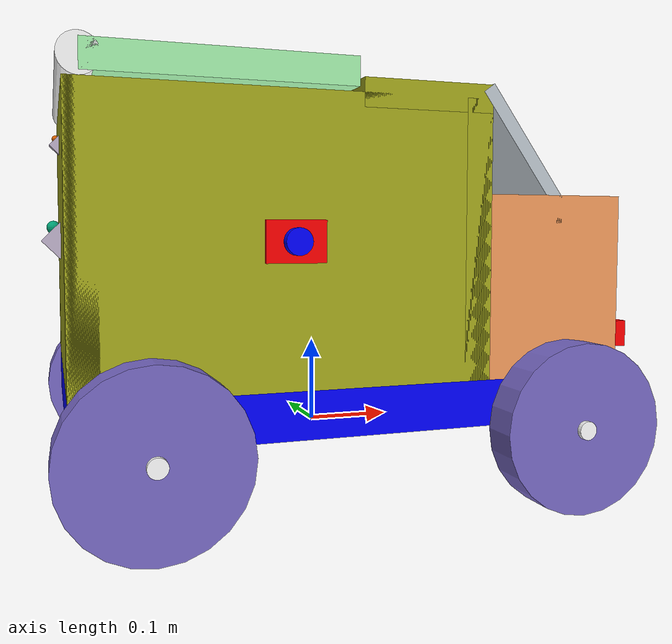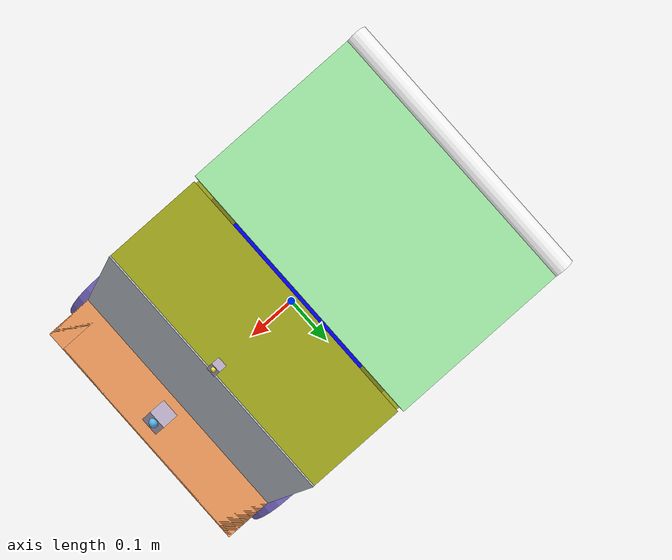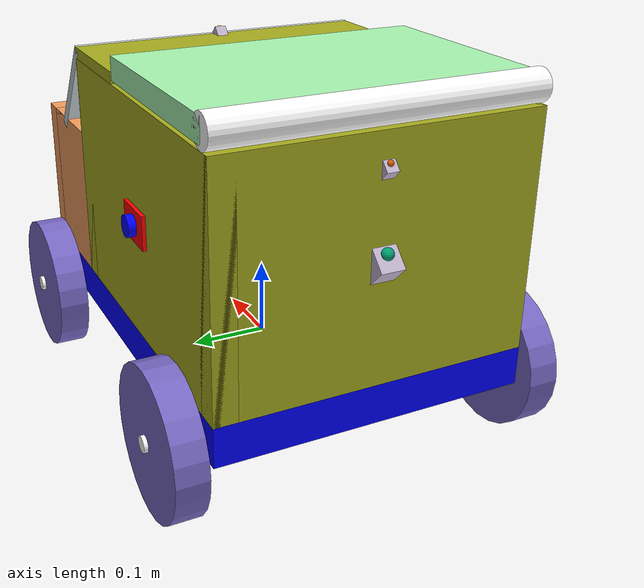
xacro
<?xml version="1.0"?>
<robot xmlns:xacro="http://www.ros.org/wiki/xacro" name="robot_frame">

    <xacro:include filename="geometry.xacro"/>
    <xacro:include filename="inertial.xacro"/>
    <xacro:include filename="wheels.xacro"/>
    <xacro:include filename="box.xacro"/>
    <xacro:include filename="lidars.xacro"/>
    <xacro:include filename="cameras.xacro"/>
    <xacro:include filename="gazebo_control.xacro"/>

    <!-- GRIPPERS AND JOINTS -->
    <!-- [DEBUG] -->

    <!-- LADLE AND JOINTS -->
    <!-- [DEBUG] -->

    <!-- BASIS LINK -->
    <link name="base_link"/>

    <!-- CHASSIS LINK -->
    <link name="chassis">
        <visual>
            <origin xyz="${chassis_depth/2.0} 0 ${chassis_height/2}"/>
            <geometry>
                <box size="${box_depth} ${box_width} ${chassis_height}"/>
            </geometry>
            <material name="BlueOne"/>
        </visual>
        <collision>
            <origin xyz="${chassis_depth/2.0} 0 ${chassis_height/2}"/>
            <geometry>
                <box size="${box_depth} ${box_width} ${chassis_height}"/>
            </geometry>
        </collision>
        <xacro:inertial_box mass="${chassis_mass}" x="${box_width}" y="${box_depth}" z="${chassis_height}">
            <origin xyz="${chassis_depth/2.0} 0 ${chassis_height/2}"/>
        </xacro:inertial_box>
    </link>
    <gazebo reference="chassis">
    	<material>Gazebo/Blue</material>
	</gazebo>

    <!-- JOINT: CHASSIS + BASIS -->
    <joint name="chassis_joint" type="fixed">
        <parent link="base_link"/>
        <child link="chassis"/>
        <origin xyz="-${chassis_depth/2.0} 0 ${chassis_height/2}"/>
    </joint>

    <!-- JOINT: CHASSIS + FRONT AXLE -->
    <joint name="front_axle_chassis_joint" type="fixed">
        <parent link="chassis"/>
        <child link="front_axle"/>
        <origin xyz="${chassis_depth - round(chassis_depth * 1/8, 3)} 0 0" rpy="${pi/2} 0 0"/>
    </joint>

    <!-- JOINT: CHASSIS + BACK AXLE -->
    <joint name="back_axle_chassis_joint" type="fixed">
        <parent link="chassis"/>
        <child link="back_axle"/>
        <origin xyz="${round(chassis_depth * 1/8, 3)} 0 0" rpy="${pi/2} 0 0"/>
    </joint>

    <!-- HOOD -->
    <!-- JOINT: HOOD FRONT + CHASSIS -->
    <joint name="hfront_chassis_joint" type="fixed">
        <parent link="chassis"/>
        <child link="hood_front"/>
        <origin xyz="${chassis_depth} 0 ${chassis_height}"/>
    </joint>

    <!-- JOINT: HOOD LEFT + CHASSIS -->
    <joint name="hleft_chassis_joint" type="fixed">
        <parent link="chassis"/>
        <child link="hood_left"/>
        <origin xyz="${chassis_box_depth + chassis_hood_depth/2} ${chassis_width/2} ${chassis_height}"/>
    </joint>

    <!-- JOINT: HOOD RIGHT + CHASSIS -->
    <joint name="hright_chassis_joint" type="fixed">
        <parent link="chassis"/>
        <child link="hood_right"/>
        <origin xyz="${chassis_box_depth + chassis_hood_depth/2} -${chassis_width/2} ${chassis_height}"/>
    </joint>

    <!-- JOINT: HOOD TOP + HOOD FRONT -->
    <joint name="htop_hfront_joint" type="fixed">
        <parent link="hood_front"/>
        <child link="hood_top"/>
        <origin xyz="-${hood_top_depth} 0 ${hood_fb_height}"/>
    </joint>

    <!-- JOINT: HOOD BAFFEL + HOOD TOP -->
    <joint name="hbaffle_htop_joint" type="fixed">
        <parent link="hood_top"/>
        <child link="hood_baffle"/>
        <origin xyz="-${hood_top_depth/2} 0 ${chassis_height}"/>
    </joint>

    <!-- LADLE -->
    <!-- JOINT: BOX LADLE + HOOD FRONT -->
    <joint name="bladle_hfront_joint" type="fixed">
        <parent link="hood_front"/>
        <child link="box_ladle_front"/>
        <origin xyz="0 0 ${hood_fb_height/5}"/>
    </joint>

    <!-- JOINT: LADLE BRACKET HOLDER LEFT + BOX LADLE -->
    <joint name="lbracket_holder_bladle_joint" type="fixed">
        <parent link="box_ladle_front"/>
        <child link="box_bracket_holder_left"/>
        <origin xyz="${box_bracket_ladle_depth + box_bracket_ladle_depth/2} ${box_bracket_ladle_width/2 - box_bracket_holder_width/2} 0"/>
    </joint>

    <!-- JOINT: LADLE BRACKET HOLDER RIGHT + BOX LADLE -->
    <joint name="rbracket_holder_bladle_joint" type="fixed">
        <parent link="box_ladle_front"/>
        <child link="box_bracket_holder_right"/>
        <origin xyz="${box_bracket_ladle_depth+ box_bracket_ladle_depth/2} -${box_bracket_ladle_width/2 - box_bracket_holder_width/2} 0"/>
    </joint>

    <!-- LADLE (INCLUDES)-->

    <!-- BOX PANELS -->
    <!-- JOINT: PANEL BACK + CHASSIS -->
    <joint name="pback_chassis_joint" type="fixed">
        <parent link="chassis"/>
        <child link="box_panel_back"/>
        <origin xyz="${box_panel_fb_depth/2} 0 ${chassis_height}"/>
    </joint>

    <!-- JOINT: PANEL FRONT + CHASSIS -->
    <joint name="pfront_chassis_joint" type="fixed">
        <parent link="chassis"/>
        <child link="box_panel_front"/>
        <origin xyz="${chassis_box_depth} 0 ${chassis_height}"/>
    </joint>

    <!-- JOINT: PANEL LEFT + CHASSIS -->
    <joint name="pleft_chassis_joint" type="fixed">
        <parent link="chassis"/>
        <child link="box_panel_left"/>
        <origin xyz="${chassis_box_depth/2} ${chassis_width/2} ${chassis_height}"/>
    </joint>

    <!-- JOINT: PANEL RIGHT + CHASSIS -->
    <joint name="pright_chassis_joint" type="fixed">
        <parent link="chassis"/>
        <child link="box_panel_right"/>
        <origin xyz="${chassis_box_depth/2} -${chassis_width/2} ${chassis_height}"/>
    </joint>

    <!-- JOINT: PANEL TOP + PANEL FRONT -->
    <joint name="ptop_pfront_joint" type="fixed">
        <parent link="box_panel_front"/>
        <child link="box_panel_top"/>
        <origin xyz="-${box_panel_top_depth} 0 ${box_panel_fb_height}"/>
    </joint>

    <!-- JOINT: HINGE + PANEL BACK -->
    <joint name="hinge_pback_joint" type="fixed">
        <parent link="box_panel_back"/>
        <child link="hinge_cover"/>
        <origin xyz="0 0 ${box_panel_fb_height + hinge_cover_radius}" rpy="${pi/2} 0 0"/>
    </joint>

    <!-- JOINT: BOX COVER + HINGE -->
    <!-- [DEBUG] -->
    <joint name="cover_hinge_joint" type="fixed">
        <parent link="hinge_cover"/>
        <child link="box_cover"/>
        <axis xyz="0 1 0"/>
        <origin xyz="0 0 0" rpy="${pi/2} 0 0" />
        <limit effort="100.0" lower="0.0" upper="1.0" velocity="0.5"/>
    </joint>

    <!-- JOINT: BOX GRIPPER + PANEL LEFT -->
    <joint name="bgripper_pleft_joint" type="fixed">
        <parent link="box_panel_left"/>
        <child link="box_gripper_left"/>
        <origin xyz="0 0 ${box_panel_lr_height/2}"/>
    </joint>

    <!-- JOINT: BOX GRIPPER HOLDER + BOX GRIPPER LEFT -->
    <joint name="bgripper_holder_pleft_joint" type="fixed">
        <parent link="box_gripper_left"/>
        <child link="box_gripper_holder_left"/>
        <origin xyz="0 ${box_gripper_holder_length/2} 0"/>
    </joint>

    <!-- JOINT: BOX GRIPPER + PANEL RIGHT -->
    <joint name="bgripper_pright_joint" type="fixed">
        <parent link="box_panel_right"/>
        <child link="box_gripper_right"/>
        <origin xyz="0 0 ${box_panel_lr_height/2}"/>
    </joint>

    <!-- JOINT: BOX GRIPPER HOLDER + BOX GRIPPER RIGHT -->
    <joint name="bgripper_holder_pright_joint" type="fixed">
        <parent link="box_gripper_right"/>
        <child link="box_gripper_holder_right"/>
        <origin xyz="0 -${box_gripper_holder_length/2} 0"/>
    </joint>

    <!-- JOINT: FRONT LEFT WHEEL -->
    <joint name="front_left_wheel_joint" type="continuous">
        <parent link="front_axle"/>
        <child link="front_left_wheel"/>
        <origin xyz="0 0 -${axle_length/2 - wheel_length/2 - wheel_screw}" rpy="${pi} 0 0"/>
        <axis xyz="0 0 1"/>
    </joint>

    <!-- JOINT: FRONT RIGHT WHEEL -->
    <joint name="front_right_wheel_joint" type="continuous">
        <parent link="front_axle"/>
        <child link="front_right_wheel"/>
        <origin xyz="0 0 ${axle_length/2 - wheel_length/2 - wheel_screw}" rpy="-${pi} 0 0"/>
        <axis xyz="0 0 -1"/>
    </joint>

    <!-- JOINT: BACK LEFT WHEEL -->
    <joint name="back_left_wheel_joint" type="continuous">
        <parent link="back_axle"/>
        <child link="back_left_wheel"/>
        <origin xyz="0 0 -${axle_length/2 - wheel_length/2 - wheel_screw}" rpy="${pi} 0 0"/>
        <axis xyz="0 0 1"/>
    </joint>

    <!-- JOINT: BACK RIGHT WHEEL -->
    <joint name="back_right_wheel_joint" type="continuous">
        <parent link="back_axle"/>
        <child link="back_right_wheel"/>
        <origin xyz="0 0 ${axle_length/2 - wheel_length/2 - wheel_screw}" rpy="-${pi} 0 0"/>
        <axis xyz="0 0 -1"/>
    </joint>

</robot>

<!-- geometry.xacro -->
<robot xmlns:xacro="http://www.ros.org/wiki/xacro">

    <!-- PROPETIES -->

    <!-- FULL BOX PARAMS -->
    <xacro:property name="box_width" value="0.4" />
    <xacro:property name="box_height" value="0.3" />
    <xacro:property name="box_depth" value="0.6" />
    <xacro:property name="box_full_mass" value="30" />

    <!-- CHASSIS PARAMS-->
    <xacro:property name="chassis_depth" value="${box_depth}" />
    <xacro:property name="chassis_hood_depth" value="${box_depth/3.7}" />
    <xacro:property name="chassis_box_depth" value="${box_depth - chassis_hood_depth}" />
    <xacro:property name="chassis_width" value="${box_width}" />
    <xacro:property name="chassis_height" value="0.05" />
    <xacro:property name="chassis_mass" value="0.5" />

    <!-- BOX PANEL PARAMS-->
    <xacro:property name="box_panel_mass" value="${box_full_mass/(6*3)}" />
    <xacro:property name="box_panel_thickness" value=".03" />
    <!-- ... FRONT-BACK -->
    <xacro:property name="box_panel_fb_width" value="${box_width}" />
    <xacro:property name="box_panel_fb_height" value="${box_height}" />
    <xacro:property name="box_panel_fb_depth" value="${box_panel_thickness}" />
    <!-- ... LEFT-RIGHT -->
    <xacro:property name="box_panel_lr_width" value="${box_panel_thickness}" />
    <xacro:property name="box_panel_lr_height" value="${box_height}" />
    <xacro:property name="box_panel_lr_depth" value="${chassis_box_depth}" />
    <!-- ... TOP -->
    <xacro:property name="box_panel_top_width" value="${box_width}" />
    <xacro:property name="box_panel_top_height" value="${box_panel_thickness}" />
    <xacro:property name="box_panel_top_depth" value="${chassis_box_depth * 1/3}" />
    <!-- ... COVER -->
    <xacro:property name="box_cover_width" value="${box_width}" />
    <xacro:property name="box_cover_height" value="${box_panel_thickness}" />
    <xacro:property name="box_cover_depth" value="${chassis_box_depth - box_panel_top_depth - hinge_cover_radius}" />

    <!-- HOOD BOX PARAMS -->
    <xacro:property name="hood_full_mass" value="${box_full_mass/6}" />
    <xacro:property name="hood_panel_mass" value="${hood_full_mass/4}" />
    <!-- ... LEFT-RIGHT -->
    <xacro:property name="hood_lr_depth" value="${chassis_hood_depth}" />
    <xacro:property name="hood_lr_width" value="${box_panel_thickness}" />
    <xacro:property name="hood_lr_max_height" value="${box_height}" />
    <xacro:property name="hood_lr_min_height" value="${hood_lr_max_height - hood_lr_max_height*1/3}" />
    <!-- ... FRONT-BACK -->
    <xacro:property name="hood_fb_width" value="${box_width}" />
    <xacro:property name="hood_fb_height" value="${hood_lr_min_height}" />
    <xacro:property name="hood_fb_depth" value="${box_panel_thickness}" />
    <!-- ... TOP -->
    <xacro:property name="hood_top_width" value="${box_width}" />
    <xacro:property name="hood_top_height" value="${box_panel_thickness}" />
    <xacro:property name="hood_top_depth" value="${chassis_hood_depth/2}" />
    <!-- ... TOP BAFFLE -->
    <xacro:property name="hood_baffle_width" value="${box_width}" />
    <xacro:property name="hood_baffle_height" value="${sqrt((hood_lr_max_height - hood_lr_min_height + box_panel_thickness)**2 + hood_top_depth**2)}" />
    <xacro:property name="hood_baffle_depth" value="${box_panel_thickness/2}" />

    <!-- BOX GRIPPERS PARAMS-->
    <xacro:property name="box_gripper_mass" value="${box_panel_mass/5}" />
    <xacro:property name="box_gripper_depth" value="${chassis_box_depth/7}" />
    <xacro:property name="box_gripper_width" value="${box_panel_thickness/3}" />
    <xacro:property name="box_gripper_height" value="${box_height/7}" />
    <!-- ... BOX GRIPPER HOLDER -->
    <xacro:property name="box_gripper_holder_radius" value="${(box_gripper_height - (box_gripper_height * 1/2.8))/2}" />
    <xacro:property name="box_gripper_holder_length" value="0.015" />
    <xacro:property name="box_gripper_holder_mass" value="${box_gripper_mass}" />
    <!-- BOX LADLE PARAMS-->
    <!-- ... BOX BRACKET -->
    <xacro:property name="box_bracket_ladle_mass" value="${box_panel_mass/5}" />
    <xacro:property name="box_bracket_ladle_depth" value="${box_panel_thickness/2}" />
    <xacro:property name="box_bracket_ladle_width" value="${box_width - box_panel_thickness*2}" />
    <xacro:property name="box_bracket_ladle_height" value="${hood_lr_min_height/3}" />
    <!-- ... BRACKET HOLDERS-->
    <xacro:property name="box_bracket_holder_mass" value="${box_panel_mass/10}" />
    <xacro:property name="box_bracket_holder_depth" value="${box_panel_thickness}" />
    <xacro:property name="box_bracket_holder_width" value="${box_panel_thickness}" />
    <xacro:property name="box_bracket_holder_height" value="${box_panel_thickness}" />

    <!-- GRIPPER PARAMS-->
    <xacro:property name="gripper_mass" value="0.1" />
    <xacro:property name="gripper_reflect_base" value="1" />

    <!-- HINGE COVER -->
    <xacro:property name="hinge_cover_mass" value="0.5" />
    <xacro:property name="hinge_cover_radius" value="0.02" />
    <xacro:property name="hinge_cover_length" value="${box_width}" />

    <!-- ARTICULATION PARAMS-->
    <!-- ... BASE PARAMS-->
    <xacro:property name="base_articulation_radius" value="${box_gripper_holder_radius*1.2}" />
    <xacro:property name="base_articulation_length" value="0.007" />
    <xacro:property name="base_articulation_mass" value="${box_gripper_holder_mass}" />
    <!-- ... JOINT PARAMS-->
    <xacro:property name="articulation_radius" value="${base_articulation_radius/1.2}" />
    <xacro:property name="articulation_length" value="${manipulator_radius*2 + (manipulator_radius * 1/2)}" />
    <xacro:property name="articulation_mass" value="${base_articulation_mass}" />
    <!-- ... END EFFECTOR PARAMS-->
    <xacro:property name="articulation_end_effector_radius" value="0.014" />
    <xacro:property name="articulation_end_effector_mass" value="${base_articulation_mass/2}" />

    <!-- MANIPULATOR PARAMS -->
    <xacro:property name="manipulator_mass_density" value="2500" /> <!-- плотность AL (кг/м3)-->
    <xacro:property name="manipulator_radius" value="${box_gripper_holder_radius - (box_gripper_holder_radius*1.8)}" />
    <xacro:property name="manipulator_1st_length" value="${box_height/10}" />
    <xacro:property name="manipulator_2nd_length" value="${box_height/1.35}" />
    <xacro:property name="manipulator_3rd_length" value="${box_width/2.2}" />

    <!-- WHEELS PARAMS-->
    <xacro:property name="wheel_radius" value="${box_depth * 1/6.5}" />
    <xacro:property name="wheel_length" value="0.04" />
    <xacro:property name="wheel_mass" value="2" />
    <xacro:property name="wheel_screw" value="0.005" />

    <!-- AXLE PARAMS-->
    <xacro:property name="axle_length" value="${box_width + wheel_length*2 + 0.02 + wheel_screw*2}" />
    <xacro:property name="axle_radius" value="0.01" />
    <xacro:property name="axle_mass" value="0.015" />

    <!-- LADLE PARAMS-->
    <xacro:property name="ladle_plate_mass" value="1.0" />
    <xacro:property name="ladle_plate_depth" value="${box_panel_thickness/2}" />
    <xacro:property name="ladle_plate_width" value="${box_width}" />
    <xacro:property name="ladle_plate_height" value="${box_height/4}" />
    <!-- .. SLEEVE (FOR PLATES) -->
    <xacro:property name="ladle_sleeve_length" value="${box_width}" />
    <xacro:property name="ladle_sleeve_radius" value="${box_panel_thickness/2}" />
    <xacro:property name="ladle_sleeve_mass" value="0.5" />
    <!-- .. BRACKET (FOR LADLE) -->
    <xacro:property name="ladle_bracket_length" value="${box_bracket_ladle_width - box_panel_thickness*2}" />
    <xacro:property name="ladle_bracket_radius" value="${box_panel_thickness/2}" />
    <xacro:property name="ladle_bracket_mass" value="0.5" />
    <!-- .. BRACKET VERTICAL (FOR LADLE) -->
    <xacro:property name="ladle_bracket_vertical_mass" value="${box_panel_mass/8}" />
    <xacro:property name="ladle_bracket_vertical_depth" value="${ladle_bracket_length/1.2}" />
    <xacro:property name="ladle_bracket_vertical_width" value="${box_panel_thickness/1.2}" />
    <xacro:property name="ladle_bracket_vertical_height" value="${box_panel_thickness/1.2}" />

    <!-- SENSORS -->
    <!-- LIDAR -->
    <xacro:property name="lidar_mass" value="0.05" />
    <xacro:property name="lidar_box_panel" value="${box_panel_thickness}" />
    <!-- CAMERA -->
    <xacro:property name="camera_mass" value="0.02" />
    <xacro:property name="camera_box_panel" value="${box_panel_thickness/2}" />

</robot>

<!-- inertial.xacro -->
<robot xmlns:xacro="http://www.ros.org/wiki/xacro">

    <xacro:macro name="inertial_default" params="mass">
        <inertial>
            <mass value="${mass}" />
            <inertia ixx="1.0" ixy="0.0" ixz="0.0" iyy="1.0" iyz="0.0" izz="1.0" />
        </inertial>
    </xacro:macro>

    <xacro:macro name="inertial_sphere" params="mass radius *origin">
        <inertial>
            <xacro:insert_block name="origin"/>
            <mass value="${mass}" />
            <inertia ixx="${(2/5) * mass * (radius*radius)}" ixy="0.0" ixz="0.0"
                    iyy="${(2/5) * mass * (radius*radius)}" iyz="0.0"
                    izz="${(2/5) * mass * (radius*radius)}" />
        </inertial>
    </xacro:macro>

    <xacro:macro name="inertial_box" params="mass x y z *origin">
        <inertial>
            <xacro:insert_block name="origin"/>
            <mass value="${mass}" />
            <inertia ixx="${(1/12) * mass * (y*y+z*z)}" ixy="0.0" ixz="0.0"
                    iyy="${(1/12) * mass * (x*x+z*z)}" iyz="0.0"
                    izz="${(1/12) * mass * (x*x+y*y)}" />
        </inertial>
    </xacro:macro>

    <xacro:macro name="inertial_cylinder" params="mass length radius *origin">
        <inertial>
            <xacro:insert_block name="origin"/>
            <mass value="${mass}" />
            <inertia ixx="${(1/12) * mass * (3*radius**2 + length**2)}" ixy="0.0" ixz="0.0"
                    iyy="${(1/12) * mass * (3*radius**2 + length**2)}" iyz="0.0"
                    izz="${(1/2) * mass * (radius**2)}" />
        </inertial>
    </xacro:macro>

</robot>

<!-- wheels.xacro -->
<robot xmlns:xacro="http://www.ros.org/wiki/xacro">

    <xacro:include filename="geometry.xacro"/>

    <xacro:macro name="axle" params="position rotate">
        <visual>
            <origin xyz="${position}" rpy="${rotate}"/>
            <geometry>
                <cylinder length="${axle_length}" radius="${axle_radius}" />
            </geometry>
            <material name="WhiteOne"/>
        </visual>
        <collision>
            <origin xyz="0 0 0" rpy="0 0 0" />
            <geometry>
                <cylinder length="${axle_length}" radius="${axle_radius}" />
            </geometry>
        </collision>
        <xacro:inertial_cylinder mass="${axle_mass}" length="${axle_length}" radius="${axle_radius}">
            <origin xyz="0 0 0" rpy="0 0 0"/>
        </xacro:inertial_cylinder>
    </xacro:macro>

    <xacro:macro name="wheel" params="position rotate">
        <visual>
            <origin xyz="${position}" rpy="${rotate}"/>
            <geometry>
                <cylinder length="${wheel_length}" radius="${wheel_radius}" />
            </geometry>
            <material name="IndigoOne"/>
        </visual>
        <collision>
            <origin xyz="0 0 0" rpy="0 0 0" />
            <geometry>
                <cylinder length="${wheel_length}" radius="${wheel_radius}" />
            </geometry>
        </collision>
        <xacro:inertial_cylinder mass="${wheel_mass}" length="${wheel_length}" radius="${wheel_radius}">
            <origin xyz="0 0 0" rpy="0 0 0"/>
        </xacro:inertial_cylinder>
    </xacro:macro>

    <!-- FRONT AXLE -->
    <link name="front_axle">
        <xacro:axle
            position="0 0 0"
            rotate="0 0 0"
        />
    </link>

    <!-- BACK AXLE -->
    <link name="back_axle">
        <xacro:axle
            position="0 0 0"
            rotate="0 0 0"
        />
    </link>

    <!-- LEFT FRONT WHEEL -->
    <link name="front_left_wheel">
        <xacro:wheel
            position="0 0 0"
            rotate="${pi} 0 0"
        />
    </link>

    <!-- RIGHT FRONT WHEEL -->
    <link name="front_right_wheel">
        <xacro:wheel
            position="0 0 0"
            rotate="-${pi} 0 0"
        />
    </link>

    <!-- LEFT BACK WHEEL -->
    <link name="back_left_wheel">
        <xacro:wheel
            position="0 0 0"
            rotate="${pi} 0 0"/>
    </link>

    <!-- RIGHT BACK WHEEL -->
    <link name="back_right_wheel">
        <xacro:wheel
            position="0 0 0"
            rotate="-${pi} 0 0"
        />
    </link>
</robot>

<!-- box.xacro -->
<robot xmlns:xacro="http://www.ros.org/wiki/xacro">

    <xacro:include filename="geometry.xacro"/>
    <xacro:include filename="materials.xacro"/>

    <!-- MACROS -->
    <xacro:macro name="box_panel" params="mass d w h position rotate *material **center_mass">
        <visual>
            <origin xyz="${position}" rpy="${rotate}"/>
            <geometry>
                <box size="${w} ${d} ${h}"/>
            </geometry>
             <xacro:insert_block name="material" />
        </visual>
        <collision>
            <origin xyz="${position}" rpy="${rotate}"/>
            <geometry>
                <box size="${w} ${d} ${h}"/>
            </geometry>
        </collision>
         <inertial>
            <mass value="${mass}" />
            <xacro:insert_block name="center_mass" />
            <inertia
                    ixx="${(1.0/12) * mass * float(w**2+h**2)}" ixy="0.0" ixz="0.0"
                    iyy="${(1.0/12) * mass * float(d**2+h**2)}" iyz="0.0"
                    izz="${(1.0/12) * mass * float(d**2+w**2)}" />
            <origin xyz="${position}" rpy="${rotate}"/>
        </inertial>
    </xacro:macro>

    <xacro:macro name="box_gripper" params="side">
       <link name="box_gripper_${side}">
            <xacro:box_panel
                mass="${box_gripper_mass}"
                d="${box_gripper_depth}"
                w="${box_gripper_width}"
                h="${box_gripper_height}"
                position=".0 .0 .0"
                rotate=".0 .0 ${pi/2}">
                <material name="RedOne"/>
                <center_mass>
                    <origin xyz=".0 .0 .0"/>
                </center_mass>
            </xacro:box_panel>
        </link>
        <link name="box_gripper_holder_${side}">
            <visual>
                <origin xyz="0 0 0" rpy="${pi/2} 0 0"/>
                <geometry>
                    <cylinder length="${box_gripper_holder_length}" radius="${box_gripper_holder_radius}" />
                </geometry>
                <material name="BlueOne"/>
            </visual>
            <collision>
                <origin xyz="0 0 0" rpy="0 0 0" />
                <geometry>
                    <cylinder length="${box_gripper_holder_length}" radius="${box_gripper_holder_radius}" />
                </geometry>
            </collision>
            <xacro:inertial_cylinder
                mass="${box_gripper_holder_mass}"
                length="${box_gripper_holder_length}"
                radius="${box_gripper_holder_radius}">
                <origin xyz="0 0 0" rpy="0 0 0"/>
            </xacro:inertial_cylinder>
        </link>
    </xacro:macro>

    <!-- PANEL BACK LINK-->
    <link name="box_panel_back">
        <xacro:box_panel
            mass="${box_full_mass/6}"
            d="${box_panel_fb_depth}"
            w="${box_panel_fb_width}"
            h="${box_panel_fb_height}"
            position="0 0 ${box_panel_fb_height/2}"
            rotate="0 0 ${pi/2}">
            <material name="YellowOne"/>
            <center_mass>
                <origin xyz=".0 .0 ${box_panel_fb_height/2}" rpy=".0 .0 .0"/>
            </center_mass>
        </xacro:box_panel>
    </link>

    <!-- PANEL FRONT LINK-->
    <link name="box_panel_front">
        <xacro:box_panel
            mass="${box_panel_mass}"
            d="${box_panel_fb_depth}"
            w="${box_panel_fb_width}"
            h="${box_panel_fb_height}"
            position="-${box_panel_fb_depth/2} 0 ${box_panel_fb_height/2}"
            rotate="0 0 ${pi/2}">
            <material name="YellowOne"/>
            <center_mass>
                <origin xyz="-${box_panel_fb_depth/2} .0 ${box_panel_fb_height/2}" rpy=".0 .0 .0"/>
            </center_mass>
        </xacro:box_panel>
    </link>

    <!-- PANEL LEFT LINK-->
    <link name="box_panel_left">
        <xacro:box_panel
            mass="${box_panel_mass}"
            d="${box_panel_lr_depth}"
            w="${box_panel_lr_width}"
            h="${box_panel_lr_height}"
            position=".0 -${box_panel_lr_width/2} ${box_panel_fb_height/2}"
            rotate=".0 .0 ${pi/2}">
            <material name="YellowOne"/>
            <center_mass>
                <origin xyz=".0 -${box_panel_lr_width/2} ${box_panel_fb_height/2}" rpy=".0 .0 .0"/>
            </center_mass>
        </xacro:box_panel>
    </link>

    <!-- PANEL RIGHT LINK-->
    <link name="box_panel_right">
        <xacro:box_panel
            mass="${box_panel_mass}"
            d="${box_panel_lr_depth}"
            w="${box_panel_lr_width}"
            h="${box_panel_lr_height}"
            position=".0 ${box_panel_lr_width/2} ${box_panel_fb_height/2}"
            rotate=".0 .0 ${pi/2}">
            <material name="YellowOne"/>
            <center_mass>
                <origin xyz=".0 ${box_panel_lr_width/2} ${box_panel_fb_height/2}" rpy=".0 .0 .0"/>
            </center_mass>
        </xacro:box_panel>
    </link>

    <!-- PANEL TOP LINK-->
    <link name="box_panel_top">
        <xacro:box_panel
            mass="${box_panel_mass * 1/3}"
            d="${box_panel_top_depth}"
            w="${box_panel_top_width}"
            h="${box_panel_top_height}"
            position="${box_panel_top_depth/2} .0 .0"
            rotate=".0 .0 ${pi/2}">
            <material name="YellowOne"/>
            <center_mass>
                <origin xyz="${box_panel_top_depth/2} .0 .0" rpy=".0 .0 ${pi/2}"/>
            </center_mass>
        </xacro:box_panel>
    </link>

    <!-- HINGE COVER LINK-->
    <link name="hinge_cover">
        <visual>
            <origin xyz="0 0 0" rpy="0 0 ${pi/2}"/>
            <geometry>
                <cylinder radius="${hinge_cover_radius}" length="${hinge_cover_length}"/>
            </geometry>
            <material name="WhiteOne"/>
        </visual>
        <collision>
            <geometry>
                <cylinder radius="${hinge_cover_radius}" length="${hinge_cover_length}"/>
            </geometry>
        </collision>
        <xacro:inertial_cylinder mass="${hinge_cover_mass}" length="${hinge_cover_length}" radius="${hinge_cover_radius}">
            <origin xyz="0 0 0" rpy="0 0 0"/>
        </xacro:inertial_cylinder>
    </link>

    <!-- BOX COVER LINK -->
    <link name="box_cover">
        <xacro:box_panel
            mass="${box_panel_mass * 1/3}"
            d="${box_cover_depth}"
            w="${box_cover_width}"
            h="${box_cover_height}"
            position="${box_cover_depth/2} .0 .0"
            rotate=".0 .0 ${pi/2}">
            <material name="GreenOne"/>
            <center_mass>
                <origin xyz="${box_cover_depth/2} .0 .0" rpy=".0 .0 ${pi/2}"/>
            </center_mass>
        </xacro:box_panel>
    </link>

    <!-- BOX GRIPPER LEFT LINK-->
    <xacro:box_gripper side="left" />

    <!-- BOX GRIPPER RIGHT LINK-->
    <xacro:box_gripper side="right" />

    <!-- HOOD LEFT LINK-->
    <link name="hood_left">
        <xacro:box_panel
            mass="${hood_panel_mass}"
            d="${hood_lr_depth}"
            w="${hood_lr_width}"
            h="${hood_lr_min_height}"
            position="0 -${hood_lr_width/2} ${hood_fb_height/2}"
            rotate="0 0 ${pi/2}">
            <material name="OrangeOne"/>
            <center_mass>
                <origin xyz=".0 .0 ${hood_fb_height/2}" rpy=".0 .0 .0"/>
            </center_mass>
        </xacro:box_panel>
    </link>

    <!-- HOOD RIGHT LINK-->
    <link name="hood_right">
        <xacro:box_panel
            mass="${hood_panel_mass}"
            d="${hood_lr_depth}"
            w="${hood_lr_width}"
            h="${hood_lr_min_height}"
            position="0 ${hood_lr_width/2} ${hood_fb_height/2}"
            rotate=".0 .0 ${pi/2}">
            <material name="OrangeOne"/>
            <center_mass>
                <origin xyz=".0 ${hood_lr_width/2} ${hood_fb_height/2}" rpy=".0 .0 .0"/>
            </center_mass>
        </xacro:box_panel>
    </link>

    <!-- HOOD FRONT LINK-->
    <link name="hood_front">
        <xacro:box_panel
            mass="${hood_panel_mass}"
            d="${hood_fb_depth}"
            w="${hood_fb_width}"
            h="${hood_fb_height}"
            position="-${hood_fb_depth/2} 0 ${hood_fb_height/2}"
            rotate="0 0 ${pi/2}">
            <material name="OrangeOne"/>
            <center_mass>
                <origin xyz="-${hood_fb_depth/2} .0 ${hood_fb_height/2}" rpy=".0 .0 .0"/>
            </center_mass>
        </xacro:box_panel>
    </link>

    <!-- HOOD TOP LINK-->
    <link name="hood_top">
        <xacro:box_panel
            mass="${hood_panel_mass/2}"
            d="${hood_top_depth}"
            w="${hood_top_width}"
            h="${hood_top_height}"
            position="${hood_top_depth/2} .0 -${hood_top_height/2}"
            rotate=".0 .0 ${pi/2}">
            <material name="OrangeOne"/>
            <center_mass>
                <origin xyz="${hood_top_depth/2} .0 .0" rpy=".0 .0 ${pi/2}"/>
            </center_mass>
        </xacro:box_panel>
    </link>

    <!-- HOOD BAFFLE LINK-->
    <link name="hood_baffle">
        <xacro:box_panel
            mass="${hood_panel_mass/3}"
            d="${hood_baffle_depth}"
            w="${hood_baffle_width}"
            h="${hood_baffle_height}"
            position=".0 .0 .0"
            rotate="-${pi/5} .0 ${pi/2}">
            <material name="GreyTransparentOne"/>
            <center_mass>
                <origin xyz="${hood_baffle_depth} .0 .0" rpy=".0 .0 ${pi/2}"/>
            </center_mass>
        </xacro:box_panel>
    </link>

    <!-- BOX LADLE LINK-->
    <link name="box_ladle_front">
        <xacro:box_panel
            mass="${box_bracket_ladle_mass}"
            d="${box_bracket_ladle_depth}"
            w="${box_bracket_ladle_width}"
            h="${box_bracket_ladle_height}"
            position="0 0 0"
            rotate="0 0 ${pi/2}">
            <material name="GreenOne"/>
            <center_mass>
                <origin xyz="0 0 0"/>
            </center_mass>
        </xacro:box_panel>
    </link>

    <!-- BOX LADLE BRACKET HOLDER LEFT LINK-->
    <link name="box_bracket_holder_left">
        <xacro:box_panel
            mass="${box_bracket_holder_mass}"
            d="${box_bracket_holder_depth}"
            w="${box_bracket_holder_width}"
            h="${box_bracket_holder_height}"
            position="0 0 0"
            rotate="0 0 0">
            <material name="RedOne"/>
            <center_mass>
                <origin xyz=".0 .0 .0"/>
            </center_mass>
        </xacro:box_panel>
    </link>

    <!-- BOX LADLE BRACKET HOLDER RIGHT LINK-->
    <link name="box_bracket_holder_right">
        <xacro:box_panel
            mass="${box_bracket_holder_mass}"
            d="${box_bracket_holder_depth}"
            w="${box_bracket_holder_width}"
            h="${box_bracket_holder_height}"
            position="0 0 0"
            rotate="0 0 0">
            <material name="RedOne"/>
            <center_mass>
                <origin xyz=".0 .0 .0" rpy=".0 .0 .0"/>
            </center_mass>
        </xacro:box_panel>
    </link>
</robot>

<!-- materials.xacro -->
<robot xmlns:xacro="http://www.ros.org/wiki/xacro">

	<material name="BlueOne">
		<color rgba="0.0 0.0 1.0 1.0"/>
	</material>

	<material name="RedOne">
		<color rgba="1.0 0.0 0.0 1.0"/>
	</material>

	<material name="WhiteOne">
		<color rgba="1.0 1.0 1.0 1.0"/>
	</material>

	<material name="YellowOne">
		<color rgba="0.651 0.67 0.114 1.0"/>
	</material>

	<material name="BlackOne">
		<color rgba="0 0 0 1.0"/>
	</material>

	<material name="OrangeOne">
		<color rgba="0.96 0.613 0.365 1.0"/>
	</material>

	<material name="PurpleOne">
		<color rgba="0.633 0.114 0.67 1.0"/>
	</material>

	<material name="TurquoiseOne">
		<color rgba="0.114 0.67 0.642 1.0"/>
	</material>

	<material name="GreenOne">
		<color rgba="0.653 0.96 0.684 1.0"/>
	</material>

	<material name="IndigoOne">
		<color rgba="0.468 0.408 0.77 1.0"/>
	</material>

	<material name="GreyOne">
		<color rgba="0.75 0.7 0.8 1.0"/>
	</material>

	<material name="GreyTransparentOne">
		<color rgba="0.754 0.79 0.82 1.0"/>
	</material>

</robot>

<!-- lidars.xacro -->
<robot xmlns:xacro="http://www.ros.org/wiki/xacro">

    <xacro:macro name="lidar_box" params="side mass surface rotate angle enable:='true'">
        <link name="${side}_lidar_box">
            <xacro:property name="reflect_" value="1"/>
            <xacro:if value="${side == 'back'}">
                <xacro:property name="reflect_" value="-1"/>
            </xacro:if>
            <visual>
                <origin rpy="${rotate}"/>
                <geometry>
                    <box size="${surface} ${surface} ${surface}"/>
                </geometry>
                <material name="GreyOne"/>
            </visual>
            <visual>
                <origin xyz="${surface/4} 0 ${surface/2}" />
                <geometry>
                    <sphere radius="${surface/4}"/>
                </geometry>
            </visual>
            <collision>
                <geometry>
                    <box size="${surface} ${surface} ${surface}"/>
                </geometry>
            </collision>
            <xacro:inertial_box
                mass="${mass}"
                x="${surface}"
                y="${surface}"
                z="${surface}">
                <origin/>
            </xacro:inertial_box>
        </link>

        <gazebo reference="${side}_lidar_box">
            <sensor name="laser_${side}" type="ray">
                <always_on>${enable}</always_on>
                <pose> 0 0 0 0 0 0 </pose>
                <visualize>true</visualize>
                <update_rate>10</update_rate>
                <ray>
                    <scan>
                        <horizontal>
                            <samples>${angle*2}</samples>
                            <resolution>0.5</resolution>
                            <min_angle>-${angle * pi/180}</min_angle>
                            <max_angle>${angle * pi/180}</max_angle>
                        </horizontal>
                    </scan>
                    <range>
                        <min>0.3</min>
                        <max>12</max>
                        <resolution>0.5</resolution>
                    </range>
                </ray>
                <plugin name="laser_controller_${side}" filename="libgazebo_ros_ray_sensor.so">
                    <ros>
                        <namespace>lidar</namespace>
                        <remapping>~/out:=scan_${side}</remapping>
                    </ros>
                    <output_type>sensor_msgs/LaserScan</output_type>
                    <frame_name>${side}_lidar</frame_name>
                </plugin>
            </sensor>
        </gazebo>

    </xacro:macro>

    <!-- FRONT LIDAR -->
    <xacro:lidar_box
        side="front"
        mass="${lidar_mass}"
        surface="${lidar_box_panel}"
        rotate="0 ${pi/4} 0"
        angle="100"
    />

    <joint name="front_lidar_box_joint" type="fixed">
        <parent link="hood_top"/>
        <child link="front_lidar_box"/>
        <origin xyz="${hood_top_depth/2} 0 0" />
    </joint>

    <!-- BACK LIDAR -->
    <xacro:lidar_box
        side="back"
        mass="${lidar_mass}"
        surface="${lidar_box_panel}"
        rotate="0 ${pi/4} 0"
        angle="90"
    />

    <joint name="back_lidar_box_joint" type="fixed">
        <parent link="box_panel_back"/>
        <child link="back_lidar_box"/>
        <origin xyz="-${box_panel_fb_depth/2} 0 ${box_panel_fb_height/2}" rpy="0 0 ${pi}"/>
    </joint>

</robot>

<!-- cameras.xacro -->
<robot xmlns:xacro="http://www.ros.org/wiki/xacro">

    <xacro:macro name="camera_box" params="side mass surface rotate enable:='true'">

        <link name="${side}_camera_box">
            <visual>
                <origin rpy="${rotate}"/>
                <geometry>
                    <box size="${surface} ${surface} ${surface}"/>
                </geometry>
                <material name="GreyOne"/>
            </visual>
            <visual>
                <origin xyz="${surface/4} 0 ${surface/2}" />
                <geometry>
                    <sphere radius="${surface/4}"/>
                </geometry>
            </visual>
            <collision>
                <geometry>
                    <box size="${surface} ${surface} ${surface}"/>
                </geometry>
            </collision>
            <xacro:inertial_box
                mass="${mass}"
                x="${surface}"
                y="${surface}"
                z="${surface}">
                <origin/>
            </xacro:inertial_box>
        </link>

        <link name="${side}_camera_optical"></link>

        <gazebo reference="${side}_camera_box">
            <sensor name="camera_${side}" type="camera">
                <pose> 0 0 0 0 0 0 </pose>
                <visualize>true</visualize>
                <update_rate>0.5</update_rate>
                <camera>
                    <horizontal_fov>1.2</horizontal_fov>
                    <image>
                        <format>R8G8B8</format>
                        <width>640</width>
                        <height>480</height>
                    </image>
                    <clip>
                        <near>0.05</near>
                        <far>8.0</far>
                    </clip>
                </camera>
                <plugin name="camera_controller_${side}" filename="libgazebo_ros_camera.so">
                    <ros>
                        <namespace>cameras</namespace>
                    </ros>
                    <frame_name>${side}_camera_optical</frame_name>
                </plugin>
            </sensor>
        </gazebo>
    </xacro:macro>

    <!-- FRONT CAMERA -->
    <xacro:camera_box
        side="front"
        mass="${camera_mass}"
        surface="${camera_box_panel}"
        rotate="0 ${pi/4} 0"
    />

    <joint name="front_camera_box_joint" type="fixed">
        <parent link="box_panel_top"/>
        <child link="front_camera_box"/>
        <origin xyz="${box_panel_top_depth - camera_box_panel/2} 0 ${box_panel_top_height/2}" />
    </joint>

    <joint name="front_camera_optical_joint" type="fixed">
        <parent link="front_camera_box"/>
        <child link="front_camera_optical"/>
        <origin xyz="0 0 0" rpy="${-pi/2} 0 ${-pi/2}"/>
    </joint>

    <!-- BACK CAMERA -->
    <xacro:camera_box
        side="back"
        mass="${camera_mass}"
        surface="${camera_box_panel}"
        rotate="0 ${pi/4} 0"
    />

    <joint name="back_camera_box_joint" type="fixed">
        <parent link="box_panel_back"/>
        <child link="back_camera_box"/>
        <origin xyz="-${box_panel_fb_depth/2} 0 ${box_panel_fb_height - (box_panel_fb_height * 1/7)}" rpy="0 0 ${pi}"/>
    </joint>

    <joint name="back_camera_optical_joint" type="fixed">
        <parent link="back_camera_box"/>
        <child link="back_camera_optical"/>
        <origin xyz="0 0 0" rpy="${-pi/2} 0 ${-pi/2}"/>
    </joint>

</robot>
